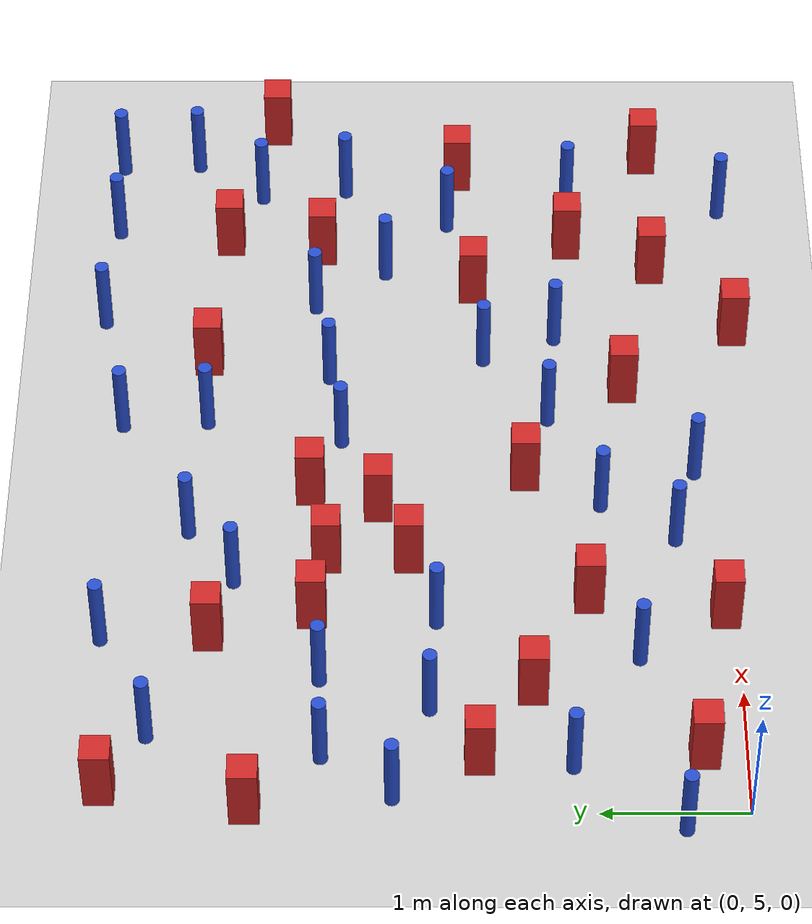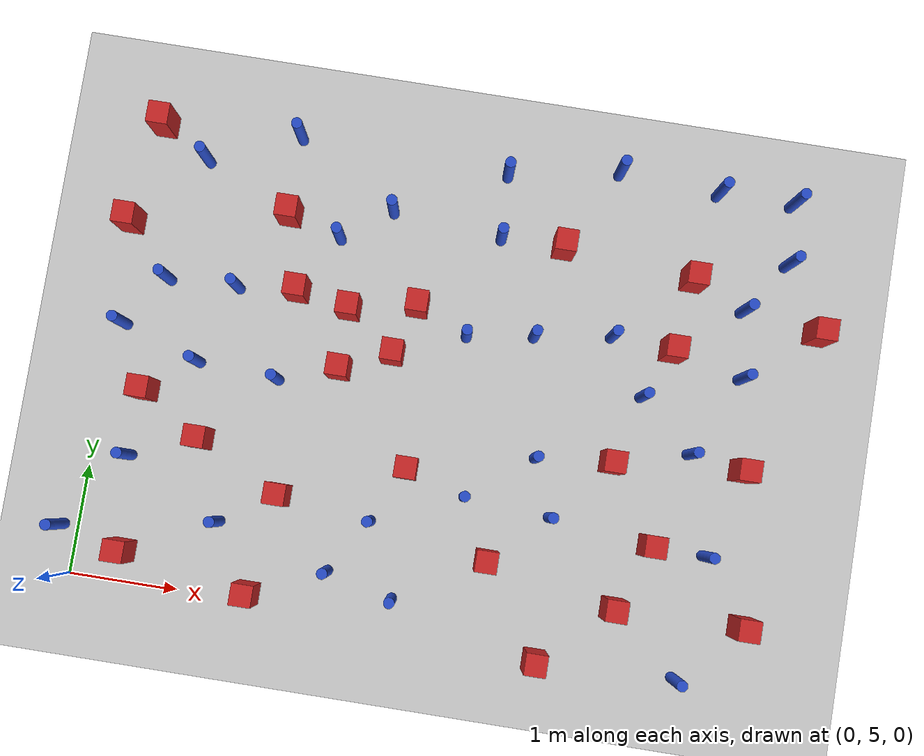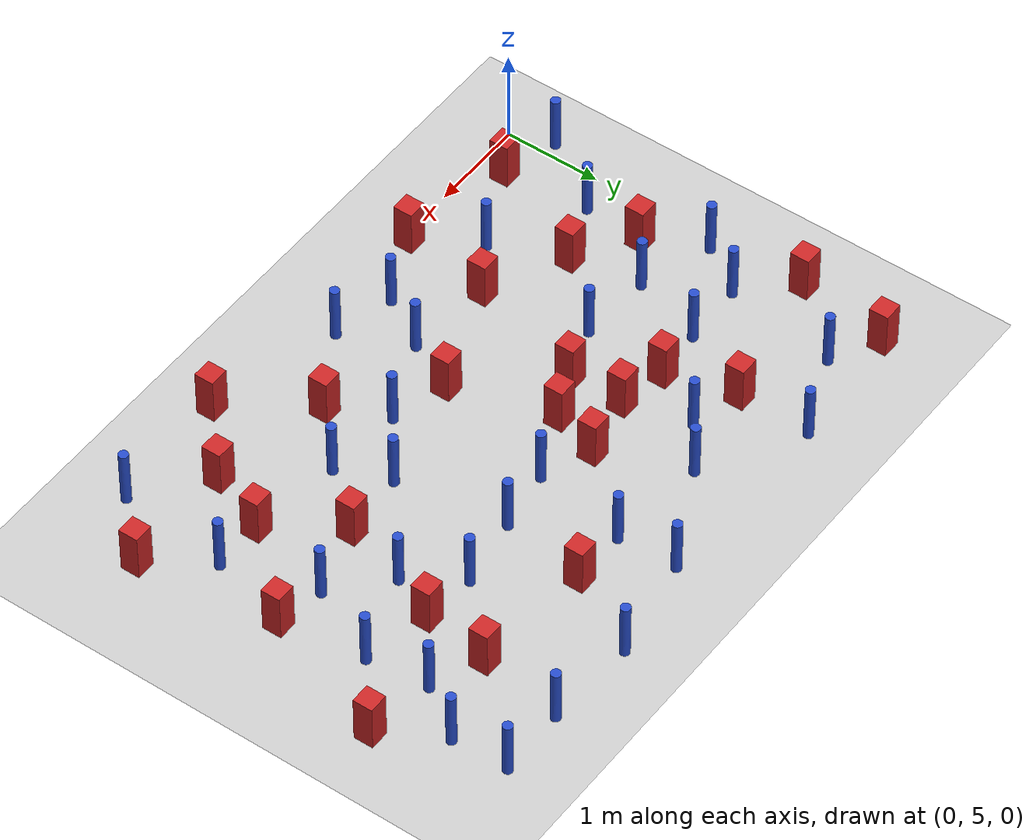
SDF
<sdf version="1.6">
 <world name="default">
  <model name="ground_plane">
   <static>1</static>
   <link name="link">
    <collision name="collision">
     <geometry><plane><normal>0 0 1</normal><size>100 100</size></plane></geometry>
     <surface><friction><ode><mu>100</mu><mu2>50</mu2></ode></friction></surface>
    </collision>
    <visual name="visual">
     <cast_shadows>0</cast_shadows>
     <geometry><plane><normal>0 0 1</normal><size>100 100</size></plane></geometry>
     <material>
      <ambient>1.0 1.0 1.0 1.0</ambient>
      <diffuse>0.8 0.8 0.8 1.0</diffuse>
      <specular>0.01 0.01 0.01 1.000000</specular>
     </material>
    </visual>
   </link>
  </model>
  <model name="pole_obstacle6">
   <static>true</static>
   <pose>6.12219689061 8.86472195481 7.38925637345e-09 -8.471706928e-08 1.24976765081e-08 -1.74513093015e-07</pose>
   <link name="link">
    <pose>0 0 0.3 0 -0 0</pose>
    <inertial>
     <mass>1</mass>
     <inertia><ixx>0.145833</ixx><ixy>0</ixy><ixz>0</ixz><iyy>0.145833</iyy><iyz>0</iyz><izz>0.125</izz></inertia>
    </inertial>
    <collision name="collision">
     <geometry><cylinder><radius>0.05</radius><length>.6</length></cylinder></geometry>
    </collision>
    <visual name="visual">
     <geometry><cylinder><radius>0.05</radius><length>.6</length></cylinder></geometry>
     <material>
      <script><name>Gazebo/Blue</name><uri>file://media/materials/scripts/gazebo.material</uri></script>
     </material>
    </visual>
   </link>
  </model>
  <model name="square_post_obstacle20">
   <static>true</static>
   <pose>4.97758653991 5.47218143391 1.91545236811e-07 -7.35059704564e-06 1.12565212e-07 2.39332434364e-05</pose>
   <link name="link">
    <pose>0 0 0.25 0 -0 0</pose>
    <inertial>
     <mass>100</mass>
     <inertia>
      <ixx>0.166667</ixx>
      <ixy>0</ixy>
      <ixz>0</ixz>
      <iyy>0.166667</iyy>
      <iyz>0</iyz>
      <izz>0.166667</izz>
     </inertia>
    </inertial>
    <collision name="collision"><geometry><box><size>.2 .2 .5</size></box></geometry></collision>
    <visual name="visual">
     <geometry><box><size>.2 .2 .5</size></box></geometry>
     <material>
      <script><name>Gazebo/Red</name><uri>file://media/materials/scripts/gazebo.material</uri></script>
     </material>
    </visual>
   </link>
  </model>
  <model name="pole_obstacle13">
   <static>true</static>
   <pose>2.96933460274 5.23645730006 7.38925637345e-09 -8.47170692798e-08 1.24976765033e-08 -1.74513093019e-07</pose>
   <link name="link">
    <pose>0 0 0.3 0 -0 0</pose>
    <inertial>
     <mass>1</mass>
     <inertia><ixx>0.145833</ixx><ixy>0</ixy><ixz>0</ixz><iyy>0.145833</iyy><iyz>0</iyz><izz>0.125</izz></inertia>
    </inertial>
    <collision name="collision">
     <geometry><cylinder><radius>0.05</radius><length>.6</length></cylinder></geometry>
    </collision>
    <visual name="visual">
     <geometry><cylinder><radius>0.05</radius><length>.6</length></cylinder></geometry>
     <material>
      <script><name>Gazebo/Blue</name><uri>file://media/materials/scripts/gazebo.material</uri></script>
     </material>
    </visual>
   </link>
  </model>
  <model name="pole_obstacle16">
   <static>true</static>
   <pose>4.60572323333 7.94365654591 7.38925637345e-09 -8.47170692796e-08 1.24976764786e-08 -1.74513093032e-07</pose>
   <link name="link">
    <pose>0 0 0.3 0 -0 0</pose>
    <inertial>
     <mass>1</mass>
     <inertia><ixx>0.145833</ixx><ixy>0</ixy><ixz>0</ixz><iyy>0.145833</iyy><iyz>0</iyz><izz>0.125</izz></inertia>
    </inertial>
    <collision name="collision">
     <geometry><cylinder><radius>0.05</radius><length>.6</length></cylinder></geometry>
    </collision>
    <visual name="visual">
     <geometry><cylinder><radius>0.05</radius><length>.6</length></cylinder></geometry>
     <material>
      <script><name>Gazebo/Blue</name><uri>file://media/materials/scripts/gazebo.material</uri></script>
     </material>
    </visual>
   </link>
  </model>
  <model name="square_post_obstacle24">
   <static>true</static>
   <pose>0.163014172727 9.27936629581 1.91545236811e-07 -7.35059704564e-06 1.12565212e-07 2.39332434364e-05</pose>
   <link name="link">
    <pose>0 0 0.25 0 -0 0</pose>
    <inertial>
     <mass>100</mass>
     <inertia>
      <ixx>0.166667</ixx>
      <ixy>0</ixy>
      <ixz>0</ixz>
      <iyy>0.166667</iyy>
      <iyz>0</iyz>
      <izz>0.166667</izz>
     </inertia>
    </inertial>
    <collision name="collision"><geometry><box><size>.2 .2 .5</size></box></geometry></collision>
    <visual name="visual">
     <geometry><box><size>.2 .2 .5</size></box></geometry>
     <material>
      <script><name>Gazebo/Red</name><uri>file://media/materials/scripts/gazebo.material</uri></script>
     </material>
    </visual>
   </link>
  </model>
  <model name="square_post_obstacle26">
   <static>true</static>
   <pose>1.79584075335 6.01691367408 1.91545236811e-07 -7.35059704564e-06 1.12565212e-07 2.39332434364e-05</pose>
   <link name="link">
    <pose>0 0 0.25 0 -0 0</pose>
    <inertial>
     <mass>100</mass>
     <inertia>
      <ixx>0.166667</ixx>
      <ixy>0</ixy>
      <ixz>0</ixz>
      <iyy>0.166667</iyy>
      <iyz>0</iyz>
      <izz>0.166667</izz>
     </inertia>
    </inertial>
    <collision name="collision"><geometry><box><size>.2 .2 .5</size></box></geometry></collision>
    <visual name="visual">
     <geometry><box><size>.2 .2 .5</size></box></geometry>
     <material>
      <script><name>Gazebo/Red</name><uri>file://media/materials/scripts/gazebo.material</uri></script>
     </material>
    </visual>
   </link>
  </model>
  <model name="pole_obstacle18">
   <static>true</static>
   <pose>6.0943171692 9.43780949698 7.38925637345e-09 -8.471706928e-08 1.24976765081e-08 -1.74513093015e-07</pose>
   <link name="link">
    <pose>0 0 0.3 0 -0 0</pose>
    <inertial>
     <mass>1</mass>
     <inertia><ixx>0.145833</ixx><ixy>0</ixy><ixz>0</ixz><iyy>0.145833</iyy><iyz>0</iyz><izz>0.125</izz></inertia>
    </inertial>
    <collision name="collision">
     <geometry><cylinder><radius>0.05</radius><length>.6</length></cylinder></geometry>
    </collision>
    <visual name="visual">
     <geometry><cylinder><radius>0.05</radius><length>.6</length></cylinder></geometry>
     <material>
      <script><name>Gazebo/Blue</name><uri>file://media/materials/scripts/gazebo.material</uri></script>
     </material>
    </visual>
   </link>
  </model>
  <model name="pole_obstacle19">
   <static>true</static>
   <pose>4.28524420275 6.19961474496 7.38925637345e-09 -8.47170692796e-08 1.24976764786e-08 -1.74513093032e-07</pose>
   <link name="link">
    <pose>0 0 0.3 0 -0 0</pose>
    <inertial>
     <mass>1</mass>
     <inertia><ixx>0.145833</ixx><ixy>0</ixy><ixz>0</ixz><iyy>0.145833</iyy><iyz>0</iyz><izz>0.125</izz></inertia>
    </inertial>
    <collision name="collision">
     <geometry><cylinder><radius>0.05</radius><length>.6</length></cylinder></geometry>
    </collision>
    <visual name="visual">
     <geometry><cylinder><radius>0.05</radius><length>.6</length></cylinder></geometry>
     <material>
      <script><name>Gazebo/Blue</name><uri>file://media/materials/scripts/gazebo.material</uri></script>
     </material>
    </visual>
   </link>
  </model>
  <model name="pole_obstacle26">
   <static>true</static>
   <pose>-0.134801562993 5.43442903382 7.38925637345e-09 -8.47170692799e-08 1.24976765043e-08 -1.74513093019e-07</pose>
   <link name="link">
    <pose>0 0 0.3 0 -0 0</pose>
    <inertial>
     <mass>1</mass>
     <inertia><ixx>0.145833</ixx><ixy>0</ixy><ixz>0</ixz><iyy>0.145833</iyy><iyz>0</iyz><izz>0.125</izz></inertia>
    </inertial>
    <collision name="collision">
     <geometry><cylinder><radius>0.05</radius><length>.6</length></cylinder></geometry>
    </collision>
    <visual name="visual">
     <geometry><cylinder><radius>0.05</radius><length>.6</length></cylinder></geometry>
     <material>
      <script><name>Gazebo/Blue</name><uri>file://media/materials/scripts/gazebo.material</uri></script>
     </material>
    </visual>
   </link>
  </model>
  <model name="pole_obstacle27">
   <static>true</static>
   <pose>5.61635046405 4.93313601313 7.38925637345e-09 -8.47170692796e-08 1.24976764786e-08 -1.74513093032e-07</pose>
   <link name="link">
    <pose>0 0 0.3 0 -0 0</pose>
    <inertial>
     <mass>1</mass>
     <inertia><ixx>0.145833</ixx><ixy>0</ixy><ixz>0</ixz><iyy>0.145833</iyy><iyz>0</iyz><izz>0.125</izz></inertia>
    </inertial>
    <collision name="collision">
     <geometry><cylinder><radius>0.05</radius><length>.6</length></cylinder></geometry>
    </collision>
    <visual name="visual">
     <geometry><cylinder><radius>0.05</radius><length>.6</length></cylinder></geometry>
     <material>
      <script><name>Gazebo/Blue</name><uri>file://media/materials/scripts/gazebo.material</uri></script>
     </material>
    </visual>
   </link>
  </model>
  <model name="square_post_obstacle39">
   <static>true</static>
   <pose>4.03702849036 8.70770955891 1.91545236811e-07 -7.35059704564e-06 1.12565212e-07 2.39332434364e-05</pose>
   <link name="link">
    <pose>0 0 0.25 0 -0 0</pose>
    <inertial>
     <mass>100</mass>
     <inertia>
      <ixx>0.166667</ixx>
      <ixy>0</ixy>
      <ixz>0</ixz>
      <iyy>0.166667</iyy>
      <iyz>0</iyz>
      <izz>0.166667</izz>
     </inertia>
    </inertial>
    <collision name="collision"><geometry><box><size>.2 .2 .5</size></box></geometry></collision>
    <visual name="visual">
     <geometry><box><size>.2 .2 .5</size></box></geometry>
     <material>
      <script><name>Gazebo/Red</name><uri>file://media/materials/scripts/gazebo.material</uri></script>
     </material>
    </visual>
   </link>
  </model>
  <model name="pole_obstacle41">
   <static>true</static>
   <pose>4.95966962679 7.43435384714 7.38925637345e-09 -8.47170692796e-08 1.24976764786e-08 -1.74513093032e-07</pose>
   <link name="link">
    <pose>0 0 0.3 0 -0 0</pose>
    <inertial>
     <mass>1</mass>
     <inertia><ixx>0.145833</ixx><ixy>0</ixy><ixz>0</ixz><iyy>0.145833</iyy><iyz>0</iyz><izz>0.125</izz></inertia>
    </inertial>
    <collision name="collision">
     <geometry><cylinder><radius>0.05</radius><length>.6</length></cylinder></geometry>
    </collision>
    <visual name="visual">
     <geometry><cylinder><radius>0.05</radius><length>.6</length></cylinder></geometry>
     <material>
      <script><name>Gazebo/Blue</name><uri>file://media/materials/scripts/gazebo.material</uri></script>
     </material>
    </visual>
   </link>
  </model>
  <model name="square_post_obstacle45">
   <static>true</static>
   <pose>1.65666069318 7.91489116434 1.91545236811e-07 -7.35059704564e-06 1.12565212e-07 2.39332434364e-05</pose>
   <link name="link">
    <pose>0 0 0.25 0 -0 0</pose>
    <inertial>
     <mass>100</mass>
     <inertia>
      <ixx>0.166667</ixx>
      <ixy>0</ixy>
      <ixz>0</ixz>
      <iyy>0.166667</iyy>
      <iyz>0</iyz>
      <izz>0.166667</izz>
     </inertia>
    </inertial>
    <collision name="collision"><geometry><box><size>.2 .2 .5</size></box></geometry></collision>
    <visual name="visual">
     <geometry><box><size>.2 .2 .5</size></box></geometry>
     <material>
      <script><name>Gazebo/Red</name><uri>file://media/materials/scripts/gazebo.material</uri></script>
     </material>
    </visual>
   </link>
  </model>
  <model name="square_post_obstacle48">
   <static>true</static>
   <pose>2.15570214086 7.82259092765 1.91545236811e-07 -7.35059704564e-06 1.12565212e-07 2.39332434364e-05</pose>
   <link name="link">
    <pose>0 0 0.25 0 -0 0</pose>
    <inertial>
     <mass>100</mass>
     <inertia>
      <ixx>0.166667</ixx>
      <ixy>0</ixy>
      <ixz>0</ixz>
      <iyy>0.166667</iyy>
      <iyz>0</iyz>
      <izz>0.166667</izz>
     </inertia>
    </inertial>
    <collision name="collision"><geometry><box><size>.2 .2 .5</size></box></geometry></collision>
    <visual name="visual">
     <geometry><box><size>.2 .2 .5</size></box></geometry>
     <material>
      <script><name>Gazebo/Red</name><uri>file://media/materials/scripts/gazebo.material</uri></script>
     </material>
    </visual>
   </link>
  </model>
  <model name="square_post_obstacle54">
   <static>true</static>
   <pose>5.2690110053 8.5926552304 1.91545236811e-07 -7.35059704564e-06 1.12565212e-07 2.39332434364e-05</pose>
   <link name="link">
    <pose>0 0 0.25 0 -0 0</pose>
    <inertial>
     <mass>100</mass>
     <inertia>
      <ixx>0.166667</ixx>
      <ixy>0</ixy>
      <ixz>0</ixz>
      <iyy>0.166667</iyy>
      <iyz>0</iyz>
      <izz>0.166667</izz>
     </inertia>
    </inertial>
    <collision name="collision"><geometry><box><size>.2 .2 .5</size></box></geometry></collision>
    <visual name="visual">
     <geometry><box><size>.2 .2 .5</size></box></geometry>
     <material>
      <script><name>Gazebo/Red</name><uri>file://media/materials/scripts/gazebo.material</uri></script>
     </material>
    </visual>
   </link>
  </model>
  <model name="square_post_obstacle66">
   <static>true</static>
   <pose>0.0103924816951 8.32089895397 1.91545236811e-07 -7.35059704564e-06 1.12565212e-07 2.39332434364e-05</pose>
   <link name="link">
    <pose>0 0 0.25 0 -0 0</pose>
    <inertial>
     <mass>100</mass>
     <inertia>
      <ixx>0.166667</ixx>
      <ixy>0</ixy>
      <ixz>0</ixz>
      <iyy>0.166667</iyy>
      <iyz>0</iyz>
      <izz>0.166667</izz>
     </inertia>
    </inertial>
    <collision name="collision"><geometry><box><size>.2 .2 .5</size></box></geometry></collision>
    <visual name="visual">
     <geometry><box><size>.2 .2 .5</size></box></geometry>
     <material>
      <script><name>Gazebo/Red</name><uri>file://media/materials/scripts/gazebo.material</uri></script>
     </material>
    </visual>
   </link>
  </model>
  <model name="pole_obstacle64">
   <static>true</static>
   <pose>1.9629031376 8.46268313194 7.38925637345e-09 -8.47170692798e-08 1.24976764928e-08 -1.74513093023e-07</pose>
   <link name="link">
    <pose>0 0 0.3 0 -0 0</pose>
    <inertial>
     <mass>1</mass>
     <inertia><ixx>0.145833</ixx><ixy>0</ixy><ixz>0</ixz><iyy>0.145833</iyy><iyz>0</iyz><izz>0.125</izz></inertia>
    </inertial>
    <collision name="collision">
     <geometry><cylinder><radius>0.05</radius><length>.6</length></cylinder></geometry>
    </collision>
    <visual name="visual">
     <geometry><cylinder><radius>0.05</radius><length>.6</length></cylinder></geometry>
     <material>
      <script><name>Gazebo/Blue</name><uri>file://media/materials/scripts/gazebo.material</uri></script>
     </material>
    </visual>
   </link>
  </model>
  <model name="pole_obstacle65">
   <static>true</static>
   <pose>0.620344553939 8.99828871501 7.38925637345e-09 -8.47170692797e-08 1.249767648e-08 -1.74513093032e-07</pose>
   <link name="link">
    <pose>0 0 0.3 0 -0 0</pose>
    <inertial>
     <mass>1</mass>
     <inertia><ixx>0.145833</ixx><ixy>0</ixy><ixz>0</ixz><iyy>0.145833</iyy><iyz>0</iyz><izz>0.125</izz></inertia>
    </inertial>
    <collision name="collision">
     <geometry><cylinder><radius>0.05</radius><length>.6</length></cylinder></geometry>
    </collision>
    <visual name="visual">
     <geometry><cylinder><radius>0.05</radius><length>.6</length></cylinder></geometry>
     <material>
      <script><name>Gazebo/Blue</name><uri>file://media/materials/scripts/gazebo.material</uri></script>
     </material>
    </visual>
   </link>
  </model>
  <model name="pole_obstacle67">
   <static>true</static>
   <pose>5.77154129931 8.36915402579 7.38925637345e-09 -8.471706928e-08 1.24976765081e-08 -1.74513093015e-07</pose>
   <link name="link">
    <pose>0 0 0.3 0 -0 0</pose>
    <inertial>
     <mass>1</mass>
     <inertia><ixx>0.145833</ixx><ixy>0</ixy><ixz>0</ixz><iyy>0.145833</iyy><iyz>0</iyz><izz>0.125</izz></inertia>
    </inertial>
    <collision name="collision">
     <geometry><cylinder><radius>0.05</radius><length>.6</length></cylinder></geometry>
    </collision>
    <visual name="visual">
     <geometry><cylinder><radius>0.05</radius><length>.6</length></cylinder></geometry>
     <material>
      <script><name>Gazebo/Blue</name><uri>file://media/materials/scripts/gazebo.material</uri></script>
     </material>
    </visual>
   </link>
  </model>
  <model name="pole_obstacle70">
   <static>true</static>
   <pose>3.41990929216 9.30250579638 7.38925637345e-09 -8.47170692793e-08 1.24976764408e-08 -1.74513093041e-07</pose>
   <link name="link">
    <pose>0 0 0.3 0 -0 0</pose>
    <inertial>
     <mass>1</mass>
     <inertia><ixx>0.145833</ixx><ixy>0</ixy><ixz>0</ixz><iyy>0.145833</iyy><iyz>0</iyz><izz>0.125</izz></inertia>
    </inertial>
    <collision name="collision">
     <geometry><cylinder><radius>0.05</radius><length>.6</length></cylinder></geometry>
    </collision>
    <visual name="visual">
     <geometry><cylinder><radius>0.05</radius><length>.6</length></cylinder></geometry>
     <material>
      <script><name>Gazebo/Blue</name><uri>file://media/materials/scripts/gazebo.material</uri></script>
     </material>
    </visual>
   </link>
  </model>
  <model name="square_post_obstacle79">
   <static>true</static>
   <pose>2.15789150202 7.25399469682 1.91545236811e-07 -7.35059704564e-06 1.12565212e-07 2.39332434364e-05</pose>
   <link name="link">
    <pose>0 0 0.25 0 -0 0</pose>
    <inertial>
     <mass>100</mass>
     <inertia>
      <ixx>0.166667</ixx>
      <ixy>0</ixy>
      <ixz>0</ixz>
      <iyy>0.166667</iyy>
      <iyz>0</iyz>
      <izz>0.166667</izz>
     </inertia>
    </inertial>
    <collision name="collision"><geometry><box><size>.2 .2 .5</size></box></geometry></collision>
    <visual name="visual">
     <geometry><box><size>.2 .2 .5</size></box></geometry>
     <material>
      <script><name>Gazebo/Red</name><uri>file://media/materials/scripts/gazebo.material</uri></script>
     </material>
    </visual>
   </link>
  </model>
  <model name="square_post_obstacle82">
   <static>true</static>
   <pose>5.97516735054 6.89926825867 1.91545236811e-07 -7.35059704564e-06 1.12565212e-07 2.39332434364e-05</pose>
   <link name="link">
    <pose>0 0 0.25 0 -0 0</pose>
    <inertial>
     <mass>100</mass>
     <inertia>
      <ixx>0.166667</ixx>
      <ixy>0</ixy>
      <ixz>0</ixz>
      <iyy>0.166667</iyy>
      <iyz>0</iyz>
      <izz>0.166667</izz>
     </inertia>
    </inertial>
    <collision name="collision"><geometry><box><size>.2 .2 .5</size></box></geometry></collision>
    <visual name="visual">
     <geometry><box><size>.2 .2 .5</size></box></geometry>
     <material>
      <script><name>Gazebo/Red</name><uri>file://media/materials/scripts/gazebo.material</uri></script>
     </material>
    </visual>
   </link>
  </model>
  <model name="pole_obstacle96">
   <static>true</static>
   <pose>2.4146936873 8.79125862791 7.38925637345e-09 -8.47170692793e-08 1.24976764408e-08 -1.74513093041e-07</pose>
   <link name="link">
    <pose>0 0 0.3 0 -0 0</pose>
    <inertial>
     <mass>1</mass>
     <inertia><ixx>0.145833</ixx><ixy>0</ixy><ixz>0</ixz><iyy>0.145833</iyy><iyz>0</iyz><izz>0.125</izz></inertia>
    </inertial>
    <collision name="collision">
     <geometry><cylinder><radius>0.05</radius><length>.6</length></cylinder></geometry>
    </collision>
    <visual name="visual">
     <geometry><cylinder><radius>0.05</radius><length>.6</length></cylinder></geometry>
     <material>
      <script><name>Gazebo/Blue</name><uri>file://media/materials/scripts/gazebo.material</uri></script>
     </material>
    </visual>
   </link>
  </model>
  <model name="pole_obstacle102">
   <static>true</static>
   <pose>0.851852601186 7.10994894384 7.38925637345e-09 -8.471706928e-08 1.24976765086e-08 -1.74513093015e-07</pose>
   <link name="link">
    <pose>0 0 0.3 0 -0 0</pose>
    <inertial>
     <mass>1</mass>
     <inertia><ixx>0.145833</ixx><ixy>0</ixy><ixz>0</ixz><iyy>0.145833</iyy><iyz>0</iyz><izz>0.125</izz></inertia>
    </inertial>
    <collision name="collision">
     <geometry><cylinder><radius>0.05</radius><length>.6</length></cylinder></geometry>
    </collision>
    <visual name="visual">
     <geometry><cylinder><radius>0.05</radius><length>.6</length></cylinder></geometry>
     <material>
      <script><name>Gazebo/Blue</name><uri>file://media/materials/scripts/gazebo.material</uri></script>
     </material>
    </visual>
   </link>
  </model>
  <model name="pole_obstacle109">
   <static>true</static>
   <pose>3.48279134463 6.26372280385 7.38925637345e-09 -8.47170692798e-08 1.24976765033e-08 -1.74513093019e-07</pose>
   <link name="link">
    <pose>0 0 0.3 0 -0 0</pose>
    <inertial>
     <mass>1</mass>
     <inertia><ixx>0.145833</ixx><ixy>0</ixy><ixz>0</ixz><iyy>0.145833</iyy><iyz>0</iyz><izz>0.125</izz></inertia>
    </inertial>
    <collision name="collision">
     <geometry><cylinder><radius>0.05</radius><length>.6</length></cylinder></geometry>
    </collision>
    <visual name="visual">
     <geometry><cylinder><radius>0.05</radius><length>.6</length></cylinder></geometry>
     <material>
      <script><name>Gazebo/Blue</name><uri>file://media/materials/scripts/gazebo.material</uri></script>
     </material>
    </visual>
   </link>
  </model>
  <model name="square_post_obstacle98">
   <static>true</static>
   <pose>0.461601346155 5.29035989123 1.91545236811e-07 -7.35059704564e-06 1.12565212e-07 2.39332434364e-05</pose>
   <link name="link">
    <pose>0 0 0.25 0 -0 0</pose>
    <inertial>
     <mass>100</mass>
     <inertia>
      <ixx>0.166667</ixx>
      <ixy>0</ixy>
      <ixz>0</ixz>
      <iyy>0.166667</iyy>
      <iyz>0</iyz>
      <izz>0.166667</izz>
     </inertia>
    </inertial>
    <collision name="collision"><geometry><box><size>.2 .2 .5</size></box></geometry></collision>
    <visual name="visual">
     <geometry><box><size>.2 .2 .5</size></box></geometry>
     <material>
      <script><name>Gazebo/Red</name><uri>file://media/materials/scripts/gazebo.material</uri></script>
     </material>
    </visual>
   </link>
  </model>
  <model name="pole_obstacle118">
   <static>true</static>
   <pose>3.89217706637 7.83043983663 7.38925637345e-09 -8.47170692798e-08 1.24976765033e-08 -1.74513093019e-07</pose>
   <link name="link">
    <pose>0 0 0.3 0 -0 0</pose>
    <inertial>
     <mass>1</mass>
     <inertia><ixx>0.145833</ixx><ixy>0</ixy><ixz>0</ixz><iyy>0.145833</iyy><iyz>0</iyz><izz>0.125</izz></inertia>
    </inertial>
    <collision name="collision">
     <geometry><cylinder><radius>0.05</radius><length>.6</length></cylinder></geometry>
    </collision>
    <visual name="visual">
     <geometry><cylinder><radius>0.05</radius><length>.6</length></cylinder></geometry>
     <material>
      <script><name>Gazebo/Blue</name><uri>file://media/materials/scripts/gazebo.material</uri></script>
     </material>
    </visual>
   </link>
  </model>
  <model name="square_post_obstacle113">
   <static>true</static>
   <pose>2.77851831855 7.94649098769 1.91545236811e-07 -7.35059704564e-06 1.12565212e-07 2.39332434364e-05</pose>
   <link name="link">
    <pose>0 0 0.25 0 -0 0</pose>
    <inertial>
     <mass>100</mass>
     <inertia>
      <ixx>0.166667</ixx>
      <ixy>0</ixy>
      <ixz>0</ixz>
      <iyy>0.166667</iyy>
      <iyz>0</iyz>
      <izz>0.166667</izz>
     </inertia>
    </inertial>
    <collision name="collision"><geometry><box><size>.2 .2 .5</size></box></geometry></collision>
    <visual name="visual">
     <geometry><box><size>.2 .2 .5</size></box></geometry>
     <material>
      <script><name>Gazebo/Red</name><uri>file://media/materials/scripts/gazebo.material</uri></script>
     </material>
    </visual>
   </link>
  </model>
  <model name="pole_obstacle132">
   <static>true</static>
   <pose>3.44941282385 8.69734725009 7.38925637345e-09 -8.47170692793e-08 1.24976764408e-08 -1.74513093041e-07</pose>
   <link name="link">
    <pose>0 0 0.3 0 -0 0</pose>
    <inertial>
     <mass>1</mass>
     <inertia><ixx>0.145833</ixx><ixy>0</ixy><ixz>0</ixz><iyy>0.145833</iyy><iyz>0</iyz><izz>0.125</izz></inertia>
    </inertial>
    <collision name="collision">
     <geometry><cylinder><radius>0.05</radius><length>.6</length></cylinder></geometry>
    </collision>
    <visual name="visual">
     <geometry><cylinder><radius>0.05</radius><length>.6</length></cylinder></geometry>
     <material>
      <script><name>Gazebo/Blue</name><uri>file://media/materials/scripts/gazebo.material</uri></script>
     </material>
    </visual>
   </link>
  </model>
  <model name="square_post_obstacle117">
   <static>true</static>
   <pose>4.77292136171 6.78872553453 1.91545236811e-07 -7.35059704564e-06 1.12565212e-07 2.39332434364e-05</pose>
   <link name="link">
    <pose>0 0 0.25 0 -0 0</pose>
    <inertial>
     <mass>100</mass>
     <inertia>
      <ixx>0.166667</ixx>
      <ixy>0</ixy>
      <ixz>0</ixz>
      <iyy>0.166667</iyy>
      <iyz>0</iyz>
      <izz>0.166667</izz>
     </inertia>
    </inertial>
    <collision name="collision"><geometry><box><size>.2 .2 .5</size></box></geometry></collision>
    <visual name="visual">
     <geometry><box><size>.2 .2 .5</size></box></geometry>
     <material>
      <script><name>Gazebo/Red</name><uri>file://media/materials/scripts/gazebo.material</uri></script>
     </material>
    </visual>
   </link>
  </model>
  <model name="pole_obstacle137">
   <static>true</static>
   <pose>1.60379576379 7.06268923337 7.38925637345e-09 -8.47170692799e-08 1.24976765033e-08 -1.74513093018e-07</pose>
   <link name="link">
    <pose>0 0 0.3 0 -0 0</pose>
    <inertial>
     <mass>1</mass>
     <inertia><ixx>0.145833</ixx><ixy>0</ixy><ixz>0</ixz><iyy>0.145833</iyy><iyz>0</iyz><izz>0.125</izz></inertia>
    </inertial>
    <collision name="collision">
     <geometry><cylinder><radius>0.05</radius><length>.6</length></cylinder></geometry>
    </collision>
    <visual name="visual">
     <geometry><cylinder><radius>0.05</radius><length>.6</length></cylinder></geometry>
     <material>
      <script><name>Gazebo/Blue</name><uri>file://media/materials/scripts/gazebo.material</uri></script>
     </material>
    </visual>
   </link>
  </model>
  <model name="square_post_obstacle121">
   <static>true</static>
   <pose>0.99534901149 6.41574080019 1.91545236811e-07 -7.35059704564e-06 1.12565212e-07 2.39332434364e-05</pose>
   <link name="link">
    <pose>0 0 0.25 0 -0 0</pose>
    <inertial>
     <mass>100</mass>
     <inertia>
      <ixx>0.166667</ixx>
      <ixy>0</ixy>
      <ixz>0</ixz>
      <iyy>0.166667</iyy>
      <iyz>0</iyz>
      <izz>0.166667</izz>
     </inertia>
    </inertial>
    <collision name="collision"><geometry><box><size>.2 .2 .5</size></box></geometry></collision>
    <visual name="visual">
     <geometry><box><size>.2 .2 .5</size></box></geometry>
     <material>
      <script><name>Gazebo/Red</name><uri>file://media/materials/scripts/gazebo.material</uri></script>
     </material>
    </visual>
   </link>
  </model>
  <model name="square_post_obstacle125">
   <static>true</static>
   <pose>4.33828852136 4.89477584282 1.91545236811e-07 -7.35059704564e-06 1.12565212e-07 2.39332434364e-05</pose>
   <link name="link">
    <pose>0 0 0.25 0 -0 0</pose>
    <inertial>
     <mass>100</mass>
     <inertia>
      <ixx>0.166667</ixx>
      <ixy>0</ixy>
      <ixz>0</ixz>
      <iyy>0.166667</iyy>
      <iyz>0</iyz>
      <izz>0.166667</izz>
     </inertia>
    </inertial>
    <collision name="collision"><geometry><box><size>.2 .2 .5</size></box></geometry></collision>
    <visual name="visual">
     <geometry><box><size>.2 .2 .5</size></box></geometry>
     <material>
      <script><name>Gazebo/Red</name><uri>file://media/materials/scripts/gazebo.material</uri></script>
     </material>
    </visual>
   </link>
  </model>
  <model name="square_post_obstacle130">
   <static>true</static>
   <pose>1.65844632125 5.0856753381 1.91545236811e-07 -7.35059704564e-06 1.12565212e-07 2.39332434364e-05</pose>
   <link name="link">
    <pose>0 0 0.25 0 -0 0</pose>
    <inertial>
     <mass>100</mass>
     <inertia>
      <ixx>0.166667</ixx>
      <ixy>0</ixy>
      <ixz>0</ixz>
      <iyy>0.166667</iyy>
      <iyz>0</iyz>
      <izz>0.166667</izz>
     </inertia>
    </inertial>
    <collision name="collision"><geometry><box><size>.2 .2 .5</size></box></geometry></collision>
    <visual name="visual">
     <geometry><box><size>.2 .2 .5</size></box></geometry>
     <material>
      <script><name>Gazebo/Red</name><uri>file://media/materials/scripts/gazebo.material</uri></script>
     </material>
    </visual>
   </link>
  </model>
  <model name="square_post_obstacle134">
   <static>true</static>
   <pose>5.17449340094 7.90419602655 1.91545236811e-07 -7.35059704564e-06 1.12565212e-07 2.39332434364e-05</pose>
   <link name="link">
    <pose>0 0 0.25 0 -0 0</pose>
    <inertial>
     <mass>100</mass>
     <inertia>
      <ixx>0.166667</ixx>
      <ixy>0</ixy>
      <ixz>0</ixz>
      <iyy>0.166667</iyy>
      <iyz>0</iyz>
      <izz>0.166667</izz>
     </inertia>
    </inertial>
    <collision name="collision"><geometry><box><size>.2 .2 .5</size></box></geometry></collision>
    <visual name="visual">
     <geometry><box><size>.2 .2 .5</size></box></geometry>
     <material>
      <script><name>Gazebo/Red</name><uri>file://media/materials/scripts/gazebo.material</uri></script>
     </material>
    </visual>
   </link>
  </model>
  <model name="square_post_obstacle140">
   <static>true</static>
   <pose>0.413822180878 6.78084805562 1.91545236811e-07 -7.35059704564e-06 1.12565212e-07 2.39332434364e-05</pose>
   <link name="link">
    <pose>0 0 0.25 0 -0 0</pose>
    <inertial>
     <mass>100</mass>
     <inertia>
      <ixx>0.166667</ixx>
      <ixy>0</ixy>
      <ixz>0</ixz>
      <iyy>0.166667</iyy>
      <iyz>0</iyz>
      <izz>0.166667</izz>
     </inertia>
    </inertial>
    <collision name="collision"><geometry><box><size>.2 .2 .5</size></box></geometry></collision>
    <visual name="visual">
     <geometry><box><size>.2 .2 .5</size></box></geometry>
     <material>
      <script><name>Gazebo/Red</name><uri>file://media/materials/scripts/gazebo.material</uri></script>
     </material>
    </visual>
   </link>
  </model>
  <model name="pole_obstacle152">
   <static>true</static>
   <pose>1.10036180665 7.854539918 7.38925637345e-09 -8.47170692799e-08 1.24976765033e-08 -1.74513093018e-07</pose>
   <link name="link">
    <pose>0 0 0.3 0 -0 0</pose>
    <inertial>
     <mass>1</mass>
     <inertia><ixx>0.145833</ixx><ixy>0</ixy><ixz>0</ixz><iyy>0.145833</iyy><iyz>0</iyz><izz>0.125</izz></inertia>
    </inertial>
    <collision name="collision">
     <geometry><cylinder><radius>0.05</radius><length>.6</length></cylinder></geometry>
    </collision>
    <visual name="visual">
     <geometry><cylinder><radius>0.05</radius><length>.6</length></cylinder></geometry>
     <material>
      <script><name>Gazebo/Blue</name><uri>file://media/materials/scripts/gazebo.material</uri></script>
     </material>
    </visual>
   </link>
  </model>
  <model name="square_post_obstacle146">
   <static>true</static>
   <pose>2.91778040019 6.43722671027 1.91545236811e-07 -7.35059704564e-06 1.12565212e-07 2.39332434364e-05</pose>
   <link name="link">
    <pose>0 0 0.25 0 -0 0</pose>
    <inertial>
     <mass>100</mass>
     <inertia>
      <ixx>0.166667</ixx>
      <ixy>0</ixy>
      <ixz>0</ixz>
      <iyy>0.166667</iyy>
      <iyz>0</iyz>
      <izz>0.166667</izz>
     </inertia>
    </inertial>
    <collision name="collision"><geometry><box><size>.2 .2 .5</size></box></geometry></collision>
    <visual name="visual">
     <geometry><box><size>.2 .2 .5</size></box></geometry>
     <material>
      <script><name>Gazebo/Red</name><uri>file://media/materials/scripts/gazebo.material</uri></script>
     </material>
    </visual>
   </link>
  </model>
  <model name="pole_obstacle158">
   <static>true</static>
   <pose>2.34577883169 5.39539826066 7.38925637345e-09 -8.47170692798e-08 1.24976765033e-08 -1.74513093019e-07</pose>
   <link name="link">
    <pose>0 0 0.3 0 -0 0</pose>
    <inertial>
     <mass>1</mass>
     <inertia><ixx>0.145833</ixx><ixy>0</ixy><ixz>0</ixz><iyy>0.145833</iyy><iyz>0</iyz><izz>0.125</izz></inertia>
    </inertial>
    <collision name="collision">
     <geometry><cylinder><radius>0.05</radius><length>.6</length></cylinder></geometry>
    </collision>
    <visual name="visual">
     <geometry><cylinder><radius>0.05</radius><length>.6</length></cylinder></geometry>
     <material>
      <script><name>Gazebo/Blue</name><uri>file://media/materials/scripts/gazebo.material</uri></script>
     </material>
    </visual>
   </link>
  </model>
  <model name="pole_obstacle162">
   <static>true</static>
   <pose>5.84158183037 7.74292030901 7.38925637345e-09 -8.47170692796e-08 1.24976764786e-08 -1.74513093032e-07</pose>
   <link name="link">
    <pose>0 0 0.3 0 -0 0</pose>
    <inertial>
     <mass>1</mass>
     <inertia><ixx>0.145833</ixx><ixy>0</ixy><ixz>0</ixz><iyy>0.145833</iyy><iyz>0</iyz><izz>0.125</izz></inertia>
    </inertial>
    <collision name="collision">
     <geometry><cylinder><radius>0.05</radius><length>.6</length></cylinder></geometry>
    </collision>
    <visual name="visual">
     <geometry><cylinder><radius>0.05</radius><length>.6</length></cylinder></geometry>
     <material>
      <script><name>Gazebo/Blue</name><uri>file://media/materials/scripts/gazebo.material</uri></script>
     </material>
    </visual>
   </link>
  </model>
  <model name="pole_obstacle173">
   <static>true</static>
   <pose>4.45350899278 9.485952968 7.38925637345e-09 -8.471706928e-08 1.24976765081e-08 -1.74513093015e-07</pose>
   <link name="link">
    <pose>0 0 0.3 0 -0 0</pose>
    <inertial>
     <mass>1</mass>
     <inertia><ixx>0.145833</ixx><ixy>0</ixy><ixz>0</ixz><iyy>0.145833</iyy><iyz>0</iyz><izz>0.125</izz></inertia>
    </inertial>
    <collision name="collision">
     <geometry><cylinder><radius>0.05</radius><length>.6</length></cylinder></geometry>
    </collision>
    <visual name="visual">
     <geometry><cylinder><radius>0.05</radius><length>.6</length></cylinder></geometry>
     <material>
      <script><name>Gazebo/Blue</name><uri>file://media/materials/scripts/gazebo.material</uri></script>
     </material>
    </visual>
   </link>
  </model>
  <model name="pole_obstacle175">
   <static>true</static>
   <pose>0.44815057559 7.83353031575 7.38925637345e-09 -8.471706928e-08 1.24976765079e-08 -1.74513093015e-07</pose>
   <link name="link">
    <pose>0 0 0.3 0 -0 0</pose>
    <inertial>
     <mass>1</mass>
     <inertia><ixx>0.145833</ixx><ixy>0</ixy><ixz>0</ixz><iyy>0.145833</iyy><iyz>0</iyz><izz>0.125</izz></inertia>
    </inertial>
    <collision name="collision">
     <geometry><cylinder><radius>0.05</radius><length>.6</length></cylinder></geometry>
    </collision>
    <visual name="visual">
     <geometry><cylinder><radius>0.05</radius><length>.6</length></cylinder></geometry>
     <material>
      <script><name>Gazebo/Blue</name><uri>file://media/materials/scripts/gazebo.material</uri></script>
     </material>
    </visual>
   </link>
  </model>
  <model name="pole_obstacle176">
   <static>true</static>
   <pose>1.28472661927 5.68440219887 7.38925637345e-09 -8.47170692799e-08 1.24976765033e-08 -1.74513093018e-07</pose>
   <link name="link">
    <pose>0 0 0.3 0 -0 0</pose>
    <inertial>
     <mass>1</mass>
     <inertia><ixx>0.145833</ixx><ixy>0</ixy><ixz>0</ixz><iyy>0.145833</iyy><iyz>0</iyz><izz>0.125</izz></inertia>
    </inertial>
    <collision name="collision">
     <geometry><cylinder><radius>0.05</radius><length>.6</length></cylinder></geometry>
    </collision>
    <visual name="visual">
     <geometry><cylinder><radius>0.05</radius><length>.6</length></cylinder></geometry>
     <material>
      <script><name>Gazebo/Blue</name><uri>file://media/materials/scripts/gazebo.material</uri></script>
     </material>
    </visual>
   </link>
  </model>
  <model name="pole_obstacle178">
   <static>true</static>
   <pose>5.47176733087 6.97749521246 7.38925637345e-09 -8.47170692796e-08 1.24976764786e-08 -1.74513093032e-07</pose>
   <link name="link">
    <pose>0 0 0.3 0 -0 0</pose>
    <inertial>
     <mass>1</mass>
     <inertia><ixx>0.145833</ixx><ixy>0</ixy><ixz>0</ixz><iyy>0.145833</iyy><iyz>0</iyz><izz>0.125</izz></inertia>
    </inertial>
    <collision name="collision">
     <geometry><cylinder><radius>0.05</radius><length>.6</length></cylinder></geometry>
    </collision>
    <visual name="visual">
     <geometry><cylinder><radius>0.05</radius><length>.6</length></cylinder></geometry>
     <material>
      <script><name>Gazebo/Blue</name><uri>file://media/materials/scripts/gazebo.material</uri></script>
     </material>
    </visual>
   </link>
  </model>
  <model name="pole_obstacle180">
   <static>true</static>
   <pose>5.74121349565 6.07479684785 7.38925637345e-09 -8.47170692796e-08 1.24976764786e-08 -1.74513093032e-07</pose>
   <link name="link">
    <pose>0 0 0.3 0 -0 0</pose>
    <inertial>
     <mass>1</mass>
     <inertia><ixx>0.145833</ixx><ixy>0</ixy><ixz>0</ixz><iyy>0.145833</iyy><iyz>0</iyz><izz>0.125</izz></inertia>
    </inertial>
    <collision name="collision">
     <geometry><cylinder><radius>0.05</radius><length>.6</length></cylinder></geometry>
    </collision>
    <visual name="visual">
     <geometry><cylinder><radius>0.05</radius><length>.6</length></cylinder></geometry>
     <material>
      <script><name>Gazebo/Blue</name><uri>file://media/materials/scripts/gazebo.material</uri></script>
     </material>
    </visual>
   </link>
  </model>
  <model name="pole_obstacle182">
   <static>true</static>
   <pose>0.369405353553 6.15843444623 7.38925637345e-09 -8.471706928e-08 1.24976765079e-08 -1.74513093015e-07</pose>
   <link name="link">
    <pose>0 0 0.3 0 -0 0</pose>
    <inertial>
     <mass>1</mass>
     <inertia><ixx>0.145833</ixx><ixy>0</ixy><ixz>0</ixz><iyy>0.145833</iyy><iyz>0</iyz><izz>0.125</izz></inertia>
    </inertial>
    <collision name="collision">
     <geometry><cylinder><radius>0.05</radius><length>.6</length></cylinder></geometry>
    </collision>
    <visual name="visual">
     <geometry><cylinder><radius>0.05</radius><length>.6</length></cylinder></geometry>
     <material>
      <script><name>Gazebo/Blue</name><uri>file://media/materials/scripts/gazebo.material</uri></script>
     </material>
    </visual>
   </link>
  </model>
  <model name="pole_obstacle188">
   <static>true</static>
   <pose>1.45112730934 9.35203592646 7.38925637345e-09 -8.47170692798e-08 1.24976764881e-08 -1.74513093027e-07</pose>
   <link name="link">
    <pose>0 0 0.3 0 -0 0</pose>
    <inertial>
     <mass>1</mass>
     <inertia><ixx>0.145833</ixx><ixy>0</ixy><ixz>0</ixz><iyy>0.145833</iyy><iyz>0</iyz><izz>0.125</izz></inertia>
    </inertial>
    <collision name="collision">
     <geometry><cylinder><radius>0.05</radius><length>.6</length></cylinder></geometry>
    </collision>
    <visual name="visual">
     <geometry><cylinder><radius>0.05</radius><length>.6</length></cylinder></geometry>
     <material>
      <script><name>Gazebo/Blue</name><uri>file://media/materials/scripts/gazebo.material</uri></script>
     </material>
    </visual>
   </link>
  </model>
  <model name="square_post_obstacle174">
   <static>true</static>
   <pose>6.48068102797 8.2703187347 1.91545236811e-07 -7.35059704564e-06 1.12565212e-07 2.39332434364e-05</pose>
   <link name="link">
    <pose>0 0 0.25 0 -0 0</pose>
    <inertial>
     <mass>100</mass>
     <inertia>
      <ixx>0.166667</ixx>
      <ixy>0</ixy>
      <ixz>0</ixz>
      <iyy>0.166667</iyy>
      <iyz>0</iyz>
      <izz>0.166667</izz>
     </inertia>
    </inertial>
    <collision name="collision"><geometry><box><size>.2 .2 .5</size></box></geometry></collision>
    <visual name="visual">
     <geometry><box><size>.2 .2 .5</size></box></geometry>
     <material>
      <script><name>Gazebo/Red</name><uri>file://media/materials/scripts/gazebo.material</uri></script>
     </material>
    </visual>
   </link>
  </model>
  <model name="pole_obstacle194">
   <static>true</static>
   <pose>2.66244501359 5.90865587126 7.38925637345e-09 -8.47170692798e-08 1.24976765033e-08 -1.74513093019e-07</pose>
   <link name="link">
    <pose>0 0 0.3 0 -0 0</pose>
    <inertial>
     <mass>1</mass>
     <inertia><ixx>0.145833</ixx><ixy>0</ixy><ixz>0</ixz><iyy>0.145833</iyy><iyz>0</iyz><izz>0.125</izz></inertia>
    </inertial>
    <collision name="collision">
     <geometry><cylinder><radius>0.05</radius><length>.6</length></cylinder></geometry>
    </collision>
    <visual name="visual">
     <geometry><cylinder><radius>0.05</radius><length>.6</length></cylinder></geometry>
     <material>
      <script><name>Gazebo/Blue</name><uri>file://media/materials/scripts/gazebo.material</uri></script>
     </material>
    </visual>
   </link>
  </model>
  <model name="square_post_obstacle197">
   <static>true</static>
   <pose>3.76750974481 5.71987799891 1.91545236811e-07 -7.35059704564e-06 1.12565212e-07 2.39332434364e-05</pose>
   <link name="link">
    <pose>0 0 0.25 0 -0 0</pose>
    <inertial>
     <mass>100</mass>
     <inertia>
      <ixx>0.166667</ixx>
      <ixy>0</ixy>
      <ixz>0</ixz>
      <iyy>0.166667</iyy>
      <iyz>0</iyz>
      <izz>0.166667</izz>
     </inertia>
    </inertial>
    <collision name="collision"><geometry><box><size>.2 .2 .5</size></box></geometry></collision>
    <visual name="visual">
     <geometry><box><size>.2 .2 .5</size></box></geometry>
     <material>
      <script><name>Gazebo/Red</name><uri>file://media/materials/scripts/gazebo.material</uri></script>
     </material>
    </visual>
   </link>
  </model>
  <model name="square_post_obstacle204">
   <static>true</static>
   <pose>2.62289278939 7.46837405932 1.91545236811e-07 -7.35059704564e-06 1.12565212e-07 2.39332434364e-05</pose>
   <link name="link">
    <pose>0 0 0.25 0 -0 0</pose>
    <inertial>
     <mass>100</mass>
     <inertia>
      <ixx>0.166667</ixx>
      <ixy>0</ixy>
      <ixz>0</ixz>
      <iyy>0.166667</iyy>
      <iyz>0</iyz>
      <izz>0.166667</izz>
     </inertia>
    </inertial>
    <collision name="collision"><geometry><box><size>.2 .2 .5</size></box></geometry></collision>
    <visual name="visual">
     <geometry><box><size>.2 .2 .5</size></box></geometry>
     <material>
      <script><name>Gazebo/Red</name><uri>file://media/materials/scripts/gazebo.material</uri></script>
     </material>
    </visual>
   </link>
  </model>
  <model name="square_post_obstacle205">
   <static>true</static>
   <pose>5.2373228755 6.08906980094 1.91545236811e-07 -7.35059704564e-06 1.12565212e-07 2.39332434364e-05</pose>
   <link name="link">
    <pose>0 0 0.25 0 -0 0</pose>
    <inertial>
     <mass>100</mass>
     <inertia>
      <ixx>0.166667</ixx>
      <ixy>0</ixy>
      <ixz>0</ixz>
      <iyy>0.166667</iyy>
      <iyz>0</iyz>
      <izz>0.166667</izz>
     </inertia>
    </inertial>
    <collision name="collision"><geometry><box><size>.2 .2 .5</size></box></geometry></collision>
    <visual name="visual">
     <geometry><box><size>.2 .2 .5</size></box></geometry>
     <material>
      <script><name>Gazebo/Red</name><uri>file://media/materials/scripts/gazebo.material</uri></script>
     </material>
    </visual>
   </link>
  </model>
  <model name="square_post_obstacle207">
   <static>true</static>
   <pose>6.16270104267 5.48806945256 1.91545236811e-07 -7.35059704564e-06 1.12565212e-07 2.39332434364e-05</pose>
   <link name="link">
    <pose>0 0 0.25 0 -0 0</pose>
    <inertial>
     <mass>100</mass>
     <inertia>
      <ixx>0.166667</ixx>
      <ixy>0</ixy>
      <ixz>0</ixz>
      <iyy>0.166667</iyy>
      <iyz>0</iyz>
      <izz>0.166667</izz>
     </inertia>
    </inertial>
    <collision name="collision"><geometry><box><size>.2 .2 .5</size></box></geometry></collision>
    <visual name="visual">
     <geometry><box><size>.2 .2 .5</size></box></geometry>
     <material>
      <script><name>Gazebo/Red</name><uri>file://media/materials/scripts/gazebo.material</uri></script>
     </material>
    </visual>
   </link>
  </model>
  <model name="square_post_obstacle209">
   <static>true</static>
   <pose>1.4643349018 8.61542808218 1.91545236811e-07 -7.35059704564e-06 1.12565212e-07 2.39332434364e-05</pose>
   <link name="link">
    <pose>0 0 0.25 0 -0 0</pose>
    <inertial>
     <mass>100</mass>
     <inertia>
      <ixx>0.166667</ixx>
      <ixy>0</ixy>
      <ixz>0</ixz>
      <iyy>0.166667</iyy>
      <iyz>0</iyz>
      <izz>0.166667</izz>
     </inertia>
    </inertial>
    <collision name="collision"><geometry><box><size>.2 .2 .5</size></box></geometry></collision>
    <visual name="visual">
     <geometry><box><size>.2 .2 .5</size></box></geometry>
     <material>
      <script><name>Gazebo/Red</name><uri>file://media/materials/scripts/gazebo.material</uri></script>
     </material>
    </visual>
   </link>
  </model>
  <model name="pole_obstacle229">
   <static>true</static>
   <pose>4.07309000957 6.71913002078 7.38925637345e-09 -8.47170692796e-08 1.24976764786e-08 -1.74513093032e-07</pose>
   <link name="link">
    <pose>0 0 0.3 0 -0 0</pose>
    <inertial>
     <mass>1</mass>
     <inertia><ixx>0.145833</ixx><ixy>0</ixy><ixz>0</ixz><iyy>0.145833</iyy><iyz>0</iyz><izz>0.125</izz></inertia>
    </inertial>
    <collision name="collision">
     <geometry><cylinder><radius>0.05</radius><length>.6</length></cylinder></geometry>
    </collision>
    <visual name="visual">
     <geometry><cylinder><radius>0.05</radius><length>.6</length></cylinder></geometry>
     <material>
      <script><name>Gazebo/Blue</name><uri>file://media/materials/scripts/gazebo.material</uri></script>
     </material>
    </visual>
   </link>
  </model>
  <model name="pole_obstacle230">
   <static>true</static>
   <pose>0.111734009575 7.35735002078 7.38925637345e-09 -8.47170692799e-08 1.24976765062e-08 -1.74513093018e-07</pose>
   <link name="link">
    <pose>0 0 0.3 0 -0 0</pose>
    <inertial>
     <mass>1</mass>
     <inertia><ixx>0.145833</ixx><ixy>0</ixy><ixz>0</ixz><iyy>0.145833</iyy><iyz>0</iyz><izz>0.125</izz></inertia>
    </inertial>
    <collision name="collision">
     <geometry><cylinder><radius>0.05</radius><length>.6</length></cylinder></geometry>
    </collision>
    <visual name="visual">
     <geometry><cylinder><radius>0.05</radius><length>.6</length></cylinder></geometry>
     <material>
      <script><name>Gazebo/Blue</name><uri>file://media/materials/scripts/gazebo.material</uri></script>
     </material>
    </visual>
   </link>
  </model>
  <model name="pole_obstacle231">
   <static>true</static>
   <pose>3.27063000957 7.73591002078 7.38925637345e-09 -8.47170692794e-08 1.24976764468e-08 -1.7451309304e-07</pose>
   <link name="link">
    <pose>0 0 0.3 0 -0 0</pose>
    <inertial>
     <mass>1</mass>
     <inertia><ixx>0.145833</ixx><ixy>0</ixy><ixz>0</ixz><iyy>0.145833</iyy><iyz>0</iyz><izz>0.125</izz></inertia>
    </inertial>
    <collision name="collision">
     <geometry><cylinder><radius>0.05</radius><length>.6</length></cylinder></geometry>
    </collision>
    <visual name="visual">
     <geometry><cylinder><radius>0.05</radius><length>.6</length></cylinder></geometry>
     <material>
      <script><name>Gazebo/Blue</name><uri>file://media/materials/scripts/gazebo.material</uri></script>
     </material>
    </visual>
   </link>
  </model>
  <model name="pole_obstacle232">
   <static>true</static>
   <pose>5.39483000957 9.43175002078 7.38925637345e-09 -8.471706928e-08 1.24976765081e-08 -1.74513093015e-07</pose>
   <link name="link">
    <pose>0 0 0.3 0 -0 0</pose>
    <inertial>
     <mass>1</mass>
     <inertia><ixx>0.145833</ixx><ixy>0</ixy><ixz>0</ixz><iyy>0.145833</iyy><iyz>0</iyz><izz>0.125</izz></inertia>
    </inertial>
    <collision name="collision">
     <geometry><cylinder><radius>0.05</radius><length>.6</length></cylinder></geometry>
    </collision>
    <visual name="visual">
     <geometry><cylinder><radius>0.05</radius><length>.6</length></cylinder></geometry>
     <material>
      <script><name>Gazebo/Blue</name><uri>file://media/materials/scripts/gazebo.material</uri></script>
     </material>
    </visual>
   </link>
  </model>
 </world>
</sdf>
